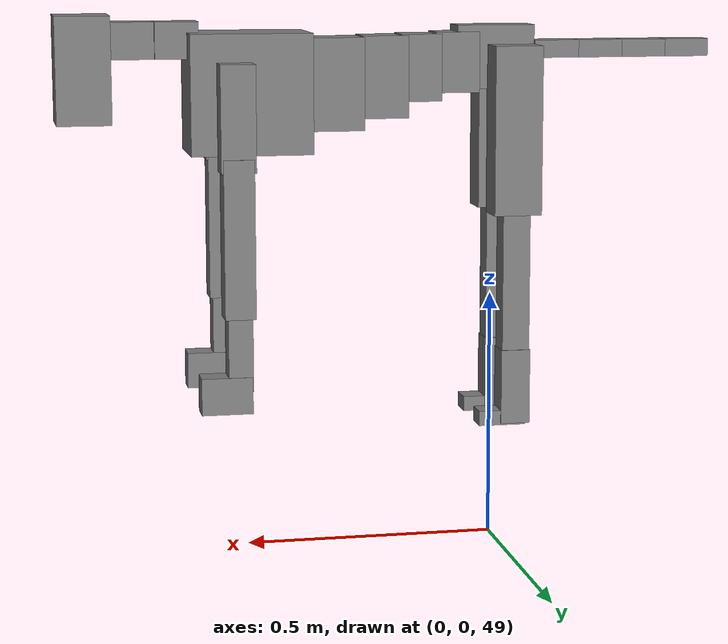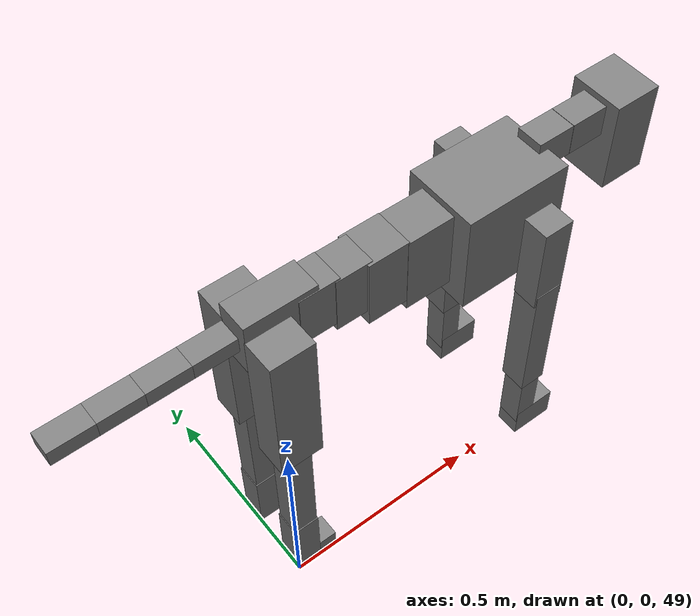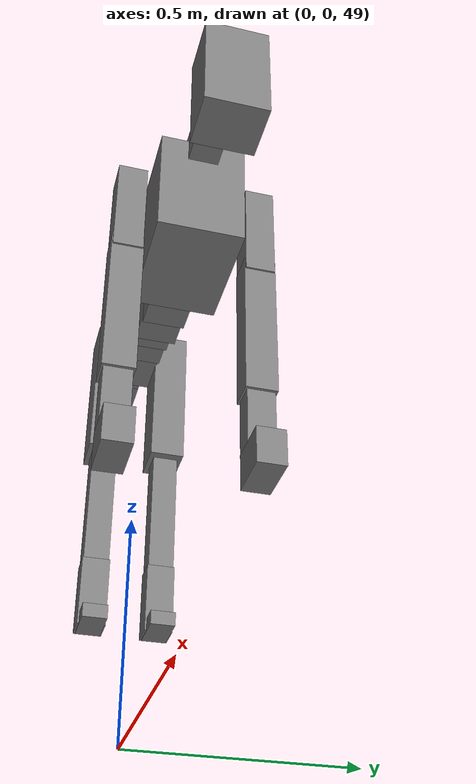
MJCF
<mujoco model="dog">

    <default>
        <joint armature="0.02" stiffness="1" damping="0.2" limited="true"/>
        <geom condim="3" friction="1 0.05 0.05" margin="0.01"/>
        <motor ctrllimited="true" ctrlrange="-1.0 1.0" forcelimited="true" gear="50"/>
    </default>

    <compiler inertiafromgeom="true" angle="radian"/>

    <option timestep="0.016" iterations="50" tolerance="1e-10" solver="Newton" jacobian="dense" cone="pyramidal"/>

    <size nconmax="20000" njmax="60000" nstack="5000000"/>
    <visual>
        <map force="0.1" zfar="30"/>
        <rgba haze="0.15 0.25 0.35 1"/>
        <quality shadowsize="2048"/>
        <global offwidth="800" offheight="800"/>
    </visual>

    <asset>
        <texture type="skybox" builtin="gradient" rgb1="0.3 0.5 0.7" rgb2="0 0 0" width="512" height="512"/>
        <texture name="texplane" type="2d" builtin="checker" rgb1=".2 .3 .4" rgb2=".1 0.15 0.2" width="512" height="512"
                 mark="cross" markrgb=".8 .8 .8"/>
        <texture name="texgeom" type="cube" builtin="flat" mark="cross" width="127" height="1278" rgb1="0.8 0.6 0.4"
                 rgb2="0.8 0.6 0.4" markrgb="1 1 1" random="0.01"/>

        <material name="matplane" reflectance="0.3" texture="texplane" texrepeat="1 1" texuniform="true"/>
        <material name="matgeom" texture="texgeom" texuniform="true" rgba="0.8 0.6 .4 1"/>
    </asset>

    <worldbody>
        <geom name="floor" pos="0 0 0" size="0 0 .25" type="plane" material="matplane" condim="3"/>

        <light directional="false" diffuse=".2 .2 .2" specular="0 0 0" pos="0 0 5" dir="0 0 -1" castshadow="false"/>
        <light mode="targetbodycom" target="torso" directional="false" diffuse=".8 .8 .8" specular="0.3 0.3 0.3"
               pos="0 0 4.0" dir="0 0 -1"/>

        <body name="root" pos="0 0 50">
            <freejoint name="root_1"/>
            <geom type="box" pos="0 0 -0.02" size="0.0774  0.0358  0.063" density="2030"/>

            <body name="spine1" pos="0.054 0 0">
                <joint name="spine1_y" axis="0 1 0" range="0 0.7" limited="true"/>
                <geom type="box" pos="0.02375 0 -0.03" size="0.04375  0.0375  0.05985" density="2030"/>

                <body name="spine2" pos="0.0612 0 0">
                    <joint name="spine2_y" axis="0 1 0" range="-0.15 0.15" limited="true"/>
                    <geom type="box" pos="0.03555  0  -0.04" size="0.04055  0.039  0.06615" density="2030"/>

                    <body name="spine3" pos="0.0730 0 0">
                        <joint name="spine3_y" axis="0 1 0" range="-0.15 0.15" limited="true"/>
                        <geom type="box" pos="0.03555  0  -0.057" size="0.04555  0.0445  0.081" density="2030"/>

                        <body name="spine4" pos="0.0780 0 0">
                            <joint name="spine4_y" axis="0 1 0" range="-0.15 0.15" limited="true"/>
                            <geom type="box" pos="0.05265  0  -0.07" size="0.05265  0.045  0.09135" density="2030"/>

                            <body name="torso" pos="0.1082 0 0">
                                <joint name="torso_y" axis="0 1 0" range="-0.15 0.15" limited="true"/>
                                <geom type="box" pos="0.11925  0  -0.085" size="0.11925  0.085  0.11745"
                                      density="2030"/>

                                <body name="neck1" pos="0.2160  0   0.0180">
                                    <joint name="neck1_y" axis="0 1 0" range="-1.2  -1" limited="true"/>
                                    <geom type="box" pos="0.0423  0  0" size="0.0423  0.03  0.036" density="2325"/>

                                    <body name="neck2" pos="0.0853  0  0">
                                        <joint name="neck2_y" axis="0 1 0" range="0.1  0" limited="true"/>
                                        <geom type="box" pos="0.0423  0  0" size="0.0423  0.03  0.036" density="2325"/>

                                        <body name="head" pos="0.0853  0  0">
                                            <joint name="head_y" axis="0 1 0" range="-0.3  -0.2" limited="true"/>
                                            <geom type="box" pos="0.0531  0  -0.055" size="0.0531  0.06  0.1044"
                                                  density="4030"/>

                                        </body>
                                    </body>
                                </body>

                                <body name="front_shoulder" pos="0.156  0   -0.0480">
                                    <joint name="front_shoulder_y" axis="0 1 0" range="-1 1.5" limited="true"/>
                                    <geom type="box" pos="0 0.13 -0.0769" size="0.0338  0.0289  0.1036" density="1158"/>
                                    <geom type="box" pos="0 -0.13 -0.0769" size="0.0338  0.0289  0.1036"
                                          density="1158"/>

                                    <body name="front_elbow" pos="0  0  -0.1538">
                                        <joint name="front_elbow_y" axis="0 1 0" range="-2 0" limited="true"/>
                                        <geom type="box" pos="0 0.13 -0.1540" size="0.0300  0.0307  0.1540"
                                              density="1081"/>
                                        <geom type="box" pos="0 -0.13 -0.1540" size="0.0300  0.0307  0.1540"
                                              density="1081"/>

                                        <body name="front_wrist" pos="0  0  -0.3080">
                                            <joint name="front_wrist_y" axis="0 1 0" range="-0.2 0" limited="true"/>
                                            <geom type="box" pos="0 0.13 -0.0643" size="0.0240  0.0267  0.0775"
                                                  density="1664"/>
                                            <geom type="box" pos="0 -0.13 -0.0643" size="0.0240  0.0267  0.0775"
                                                  density="1664"/>

                                            <body name="front_finger_end" pos="0  0  -0.1287">
                                                <joint name="front_finger_y" axis="0 1 0" range="-0.4 1"
                                                       limited="true"/>
                                                <geom type="box" pos="0.0272  0.13  -0.0210"
                                                      size="0.0498  0.0272  0.0360" density="1515"/>
                                                <geom type="box" pos="0.0272  -0.13  -0.0210"
                                                      size="0.0498  0.0272  0.0360" density="1515"/>

                                            </body>

                                        </body>
                                    </body>
                                </body>

                            </body>
                        </body>
                    </body>
                </body>
            </body>

            <body name="back_hip" pos="-0.03 0 -0.018">
                <joint name="back_hip_y" axis="0 1 0" range="-1.5 0.3" limited="true"/>
                <geom type="box" pos="0 0.07 -0.1442" size="0.0477  0.0374  0.1670" density="1154"/>
                <geom type="box" pos="0 -0.07 -0.1442" size="0.0477  0.0374  0.1670" density="1154"/>

                <body name="back_knee" pos="0  0  -0.2883">
                    <joint name="back_knee_y" axis="0 1 0" range="0 2.8" limited="true"/>
                    <geom type="box" pos="0 0.07 -0.1531" size="0.0275  0.0271  0.1687" density="1227"/>
                    <geom type="box" pos="0 -0.07 -0.1531" size="0.0275  0.0271  0.1687" density="1227"/>

                    <body name="back_ankle" pos="0  0  -0.3062">
                        <joint name="back_ankle_y" axis="0 1 0" range="-2.2 0" limited="true"/>
                        <geom type="box" pos="0 0.07 -0.0636" size="0.0293  0.0293  0.0748" density="1284"/>
                        <geom type="box" pos="0 -0.07 -0.0636" size="0.0293  0.0293  0.0748" density="1284"/>

                        <body name="back_toe_end" pos="0  0  -0.1271">
                            <joint name="back_toe_y" axis="0 1 0" range="-0.4 1" limited="true"/>
                            <geom type="box" pos="0.0258  0.07  0.0001" size="0.0473  0.0258  0.0149" density="1515"/>
                            <geom type="box" pos="0.0258  -0.07  0.0001" size="0.0473  0.0258  0.0149" density="1515"/>

                        </body>
                    </body>
                </body>
            </body>

            <body name="tail1" pos="-0.074 0 -0.006">
                <joint name="tail1_y" axis="0 1 0" range="-0.2 0.2" limited="true"/>
                <geom type="box" pos="-0.0536  0  0" size="0.045  0.025  0.0175" density="1587"/>

                <body name="tail2" pos="-0.09 0 0">
                    <joint name="tail2_y" axis="0 1 0" range="-0.2 0.2" limited="true"/>
                    <geom type="box" pos="-0.0536  0  0" size="0.045  0.025  0.0175" density="1587"/>

                    <body name="tail3" pos="-0.09 0 0">
                        <joint name="tail3_y" axis="0 1 0" range="-0.2 0.2" limited="true"/>
                        <geom type="box" pos="-0.0536  0  0" size="0.045  0.025  0.0175" density="1587"/>

                        <body name="tail4" pos="-0.09 0 0">
                            <joint name="tail4_y" axis="0 1 0" range="-0.2 0.2" limited="true"/>
                            <geom type="box" pos="-0.0536  0  0" size="0.045  0.025  0.0175" density="1587"/>

                        </body>
                    </body>
                </body>
            </body>
        </body>
    </worldbody>

    <actuator>
        <motor joint="spine1_y" forcerange="-150 150     "/>
        <motor joint="spine2_y" forcerange="-150 150     "/>
        <motor joint="spine3_y" forcerange="-150 150     "/>
        <motor joint="spine4_y" forcerange="-150 150     "/>
        <motor joint="torso_y" forcerange="-150 150     "/>
        <motor joint="neck1_y" forcerange="-100 100       "/>
        <motor joint="neck2_y" forcerange="-100 100       "/>
        <motor joint="head_y" forcerange="-150 150       "/>
        <motor joint="front_shoulder_y" forcerange="-140.54 151.87"/>
        <motor joint="front_elbow_y" forcerange="-188.74 134.27"/>
        <motor joint="front_wrist_y" forcerange="-74.09 139.22"/>
        <motor joint="front_finger_y" forcerange="-68.37 36.44"/>
        <motor joint="back_hip_y" forcerange="-338.88 360.19"/>
        <motor joint="back_knee_y" forcerange="-281.58 312.07"/>
        <motor joint="back_angle_y" forcerange="-197.29 172.24"/>
        <motor joint="back_toe_y" forcerange="-58.01 68.55"/>
        <motor joint="tail1_y" forcerange="-50 50     "/>
        <motor joint="tail2_y" forcerange="-50 50     "/>
        <motor joint="tail3_y" forcerange="-50 50     "/>
        <motor joint="tail4_y" forcerange="-50 50     "/>
    </actuator>
</mujoco>
